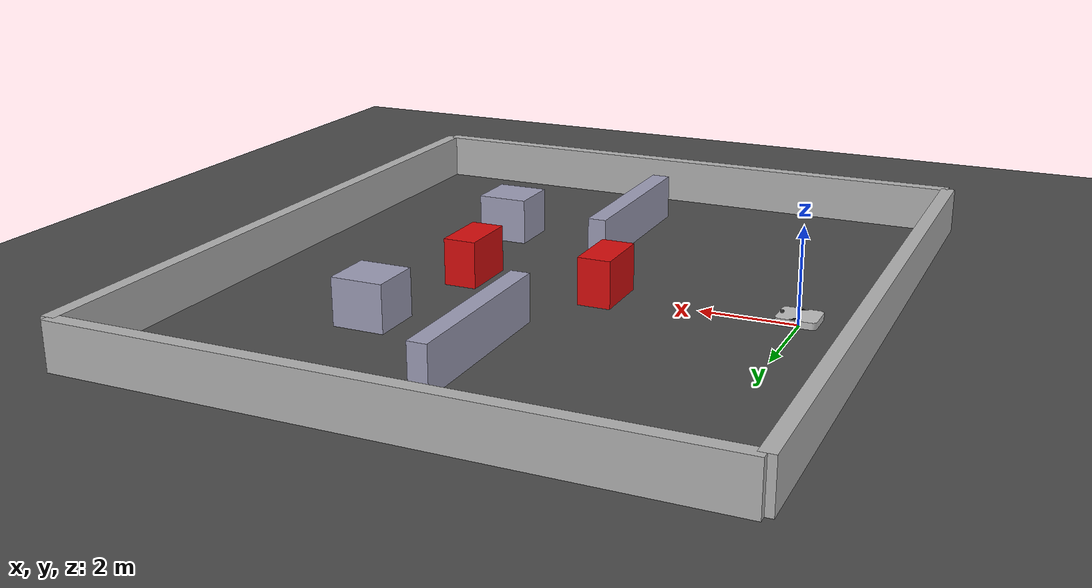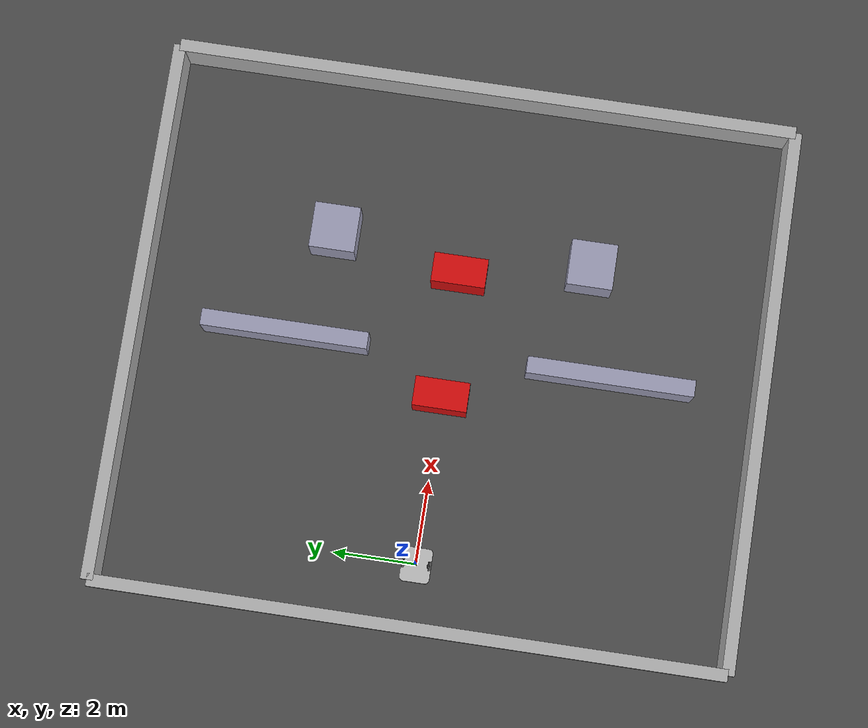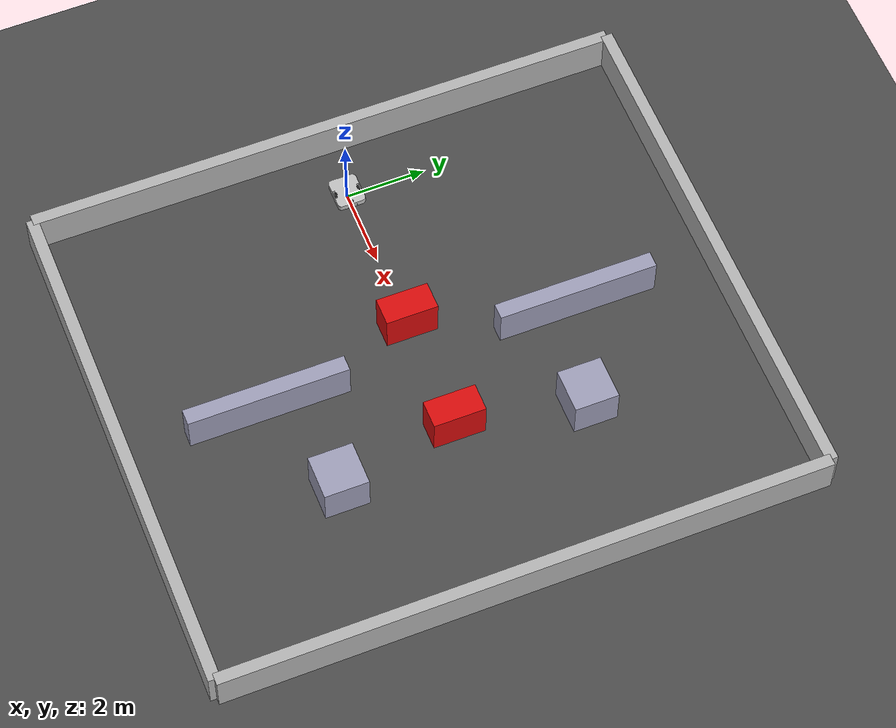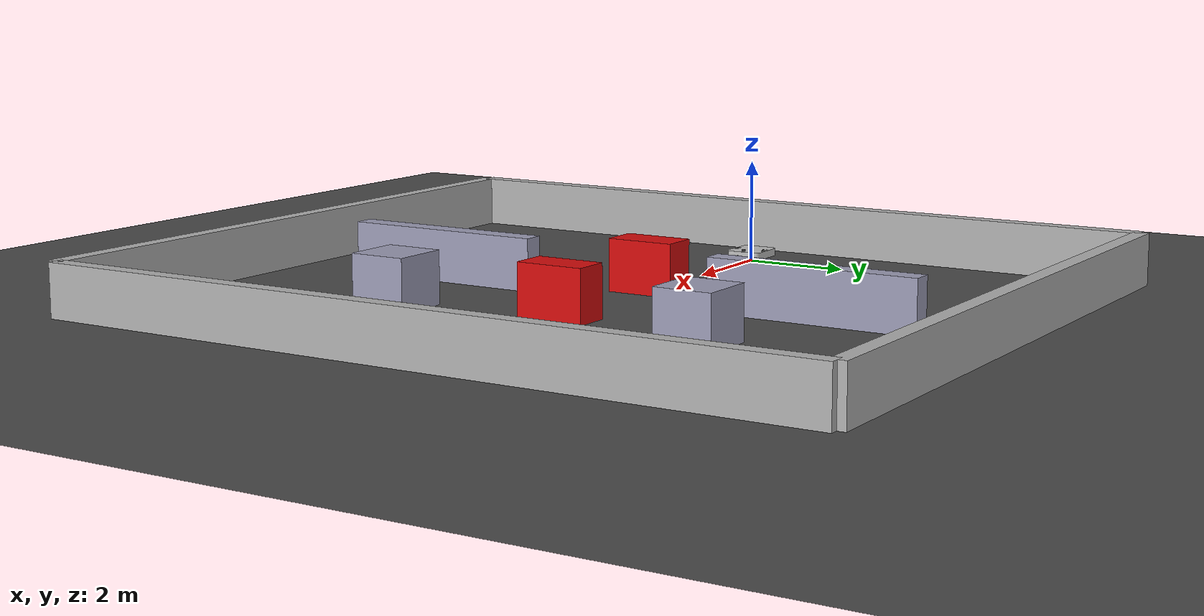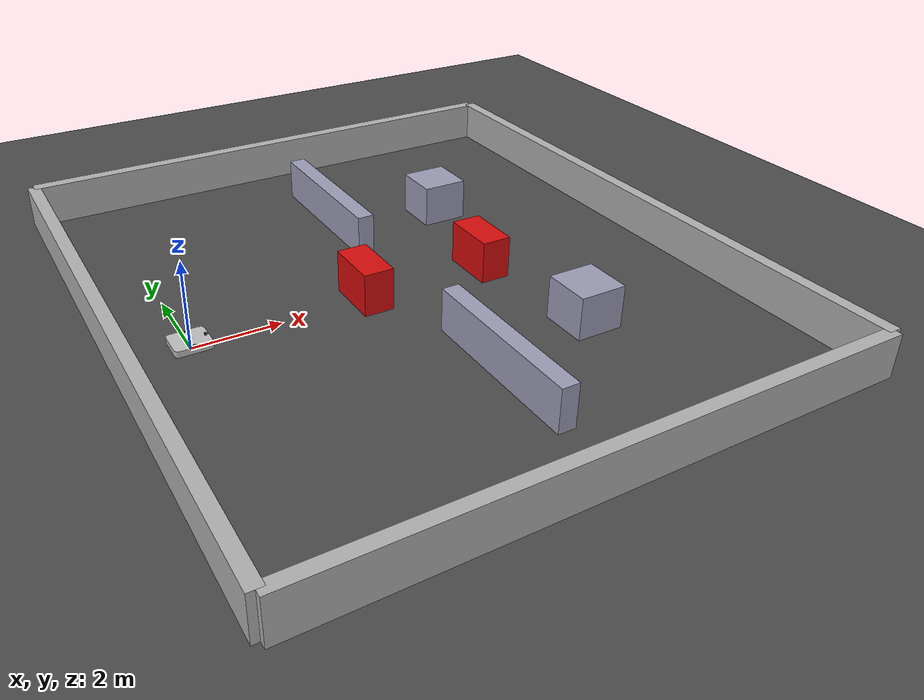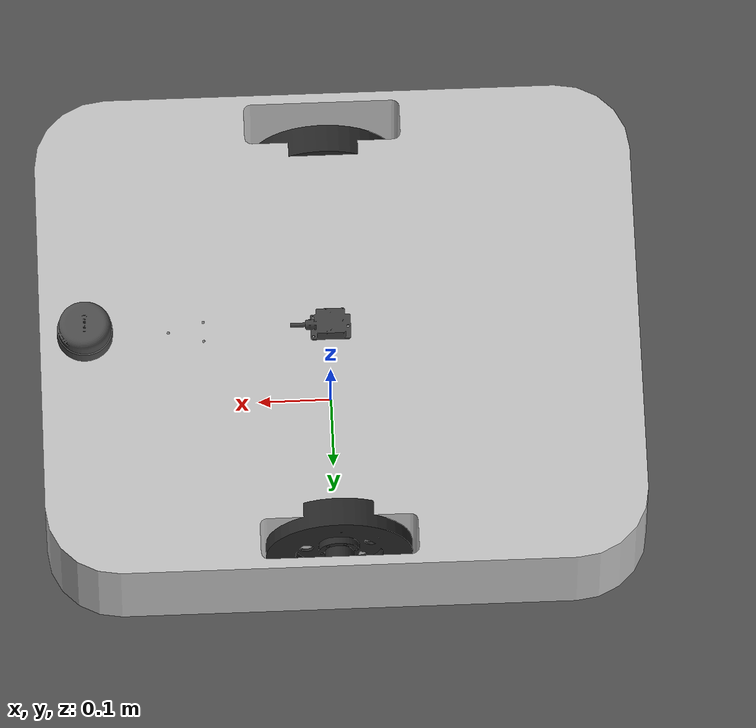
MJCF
<?xml version="1.0" encoding="utf-8"?>

<mujoco model="agv_nav2_test_unexpected_obstacle">

  <compiler
    angle="degree"
    meshdir="../meshes"
    autolimits="true"/>

  <option
    timestep="0.002"
    gravity="0 0 -9.81"
    integrator="implicitfast"/>

  <visual>
    <headlight
      ambient="0.4 0.4 0.4"
      diffuse="0.8 0.8 0.8"
      specular="0.1 0.1 0.1"/>
  </visual>

  <statistic center="0 0 0.2" extent="1.5"/>

  <default>
    <joint damping="0.1" armature="0.001"/>

    <!-- Visual STL meshes never participate in contact or LiDAR ray casting. -->
    <default class="visual">
      <geom
        type="mesh"
        contype="0"
        conaffinity="0"
        density="0"
        group="2"/>
    </default>

    <!-- Robot collision primitives remain in group 3. -->
    <default class="collision">
      <geom
        group="3"
        density="0"
        friction="1.0 0.005 0.0001"
        solref="0.005 1"
        solimp="0.9 0.95 0.001"/>
    </default>
  </default>

  <asset>
    <texture
      name="ground_texture"
      type="2d"
      builtin="checker"
      rgb1="0.25 0.25 0.25"
      rgb2="0.35 0.35 0.35"
      width="512"
      height="512"/>

    <material
      name="ground_material"
      texture="ground_texture"
      texrepeat="5 5"
      reflectance="0.05"/>

    <mesh name="base_link_mesh" file="base_link.STL"/>
    <mesh name="left_wheel_mesh" file="left_wheel.STL"/>
    <mesh name="right_wheel_mesh" file="right_wheel.STL"/>
    <mesh name="front_left_caster_mesh" file="front_left_caster.STL"/>
    <mesh name="front_right_caster_mesh" file="front_right_caster.STL"/>
    <mesh name="rear_left_caster_mesh" file="rear_left_caster.STL"/>
    <mesh name="rear_right_caster_mesh" file="rear_right_caster.STL"/>
    <mesh name="imu_mesh" file="imu.STL"/>
    <mesh name="lidar_mesh" file="lidar.STL"/>
  </asset>

  <worldbody>
    <light
      name="main_light"
      pos="0 0 4"
      dir="0 0 -1"
      directional="true"/>

    <geom
      name="floor"
      type="plane"
      group="0"
      size="80 30 0.1"
      material="ground_material"
      friction="1.0 0.005 0.0001"/>

    <!-- One large transfer-test arena; the base workspace model is untouched. -->
    <include file="transfer_combined_environment.xml"/>

    <!-- base_link starts 5 cm above its nominal settled height of 0.1 m. -->
    <body name="base_link" pos="0 0 0.15">
      <freejoint name="base_freejoint"/>

      <!--
        The active links sum to exactly 80 kg:
        chassis (including camera mass) + 2 wheels + 4 casters + IMU + LiDAR.
      -->
      <inertial
        pos="-0.01641684226393 -2.127036027730e-08 0.01536357867772"
        mass="77.76660059782901"
        fullinertia="3.2338238997685766 4.5790630022931795 7.535284316709289 6.94917763249993e-07 -0.010447117841865663 -5.34948547228727e-08"/>

      <geom
        name="base_visual"
        class="visual"
        mesh="base_link_mesh"
        rgba="0.75 0.75 0.75 1"/>

      <!-- Three boxes retain wheel clearance while covering the CAD envelope. -->
      <geom
        name="base_collision_rear"
        class="collision"
        type="box"
        pos="-0.322 0 0.015"
        size="0.100 0.357 0.0725"
        rgba="0.2 0.5 0.8 0.15"/>
      <geom
        name="base_collision_center"
        class="collision"
        type="box"
        pos="-0.012 0 0.015"
        size="0.210 0.250 0.0725"
        rgba="0.2 0.5 0.8 0.15"/>
      <geom
        name="base_collision_front"
        class="collision"
        type="box"
        pos="0.298 0 0.015"
        size="0.100 0.357 0.0725"
        rgba="0.2 0.5 0.8 0.15"/>

      <!-- Navigation reference at ground level when base_link is at z=0.1 m. -->
      <site
        name="base_foot_link"
        type="sphere"
        pos="0 0 -0.1"
        size="0.005"
        rgba="0 1 0 0"/>

      <!-- Positive wheel angle corresponds to forward robot motion (+X). -->
      <body name="left_wheel" pos="0 0.297 0" euler="-90 0 0">
        <joint
          name="left_wheel_jt"
          type="hinge"
          axis="0 0 1"
          limited="false"
          damping="0.2"/>
        <inertial
          pos="-2.2767068983e-06 -4.0883539315e-07 -0.0141278415"
          mass="0.936684355982048"
          fullinertia="0.0029343491062 0.0029343328072 0.0056452287041 3.0243843436e-09 1.7611681221e-08 3.1625847890e-09"/>
        <geom
          name="left_wheel_visual"
          class="visual"
          mesh="left_wheel_mesh"
          rgba="0.15 0.15 0.15 1"/>
        <geom
          name="left_wheel_collision"
          class="collision"
          type="cylinder"
          size="0.1 0.028"
          friction="1.2 0.01 0.0001"
          rgba="1 0 0 0.2"/>
      </body>

      <body name="right_wheel" pos="0 -0.297 0" euler="-90 0 0">
        <joint
          name="right_wheel_jt"
          type="hinge"
          axis="0 0 1"
          limited="false"
          damping="0.2"/>
        <inertial
          pos="2.0712286184e-06 -1.0298315041e-06 0.0141278415"
          mass="0.936684355982047"
          fullinertia="0.0029343462033 0.0029343357101 0.0056452287041 -6.9306759880e-09 1.6022183872e-08 -7.9663594389e-09"/>
        <geom
          name="right_wheel_visual"
          class="visual"
          mesh="right_wheel_mesh"
          rgba="0.15 0.15 0.15 1"/>
        <geom
          name="right_wheel_collision"
          class="collision"
          type="cylinder"
          size="0.1 0.028"
          friction="1.2 0.01 0.0001"
          rgba="1 0 0 0.2"/>
      </body>

      <!-- Free ball joints let the four ball casters roll in any direction. -->
      <body name="front_left_caster" pos="0.323 0.167 -0.078807">
        <joint name="front_left_caster_jt" type="ball" damping="0.001"/>
        <inertial
          pos="0 0 -2.7371825402e-05"
          mass="0.0399091557703669"
          fullinertia="7.2111462855e-06 7.2111444698e-06 7.2594199749e-06 8.8035157662e-13 -8.7566291737e-14 2.1607959245e-13"/>
        <geom name="caster_front_left_visual" class="visual" mesh="front_left_caster_mesh" rgba="0.2 0.2 0.2 1"/>
        <geom name="caster_front_left_collision" class="collision" type="sphere" size="0.0212" friction="0.35 0.002 0.0001" rgba="0.1 0.8 0.2 0.25"/>
      </body>

      <body name="front_right_caster" pos="0.323 -0.167 -0.078807">
        <joint name="front_right_caster_jt" type="ball" damping="0.001"/>
        <inertial
          pos="0 0 -2.7371825402e-05"
          mass="0.0399091557703669"
          fullinertia="7.2111462855e-06 7.2111444698e-06 7.2594199749e-06 8.8035157716e-13 -8.7566300715e-14 2.1607958912e-13"/>
        <geom name="caster_front_right_visual" class="visual" mesh="front_right_caster_mesh" rgba="0.2 0.2 0.2 1"/>
        <geom name="caster_front_right_collision" class="collision" type="sphere" size="0.0212" friction="0.35 0.002 0.0001" rgba="0.1 0.8 0.2 0.25"/>
      </body>

      <body name="rear_left_caster" pos="-0.347 0.167 -0.078807">
        <joint name="rear_left_caster_jt" type="ball" damping="0.001"/>
        <inertial
          pos="0 0 -2.7371825402e-05"
          mass="0.0399091557703668"
          fullinertia="7.2111462855e-06 7.2111444698e-06 7.2594199749e-06 8.8035157366e-13 -8.7566301701e-14 2.1607958824e-13"/>
        <geom name="caster_rear_left_visual" class="visual" mesh="rear_left_caster_mesh" rgba="0.2 0.2 0.2 1"/>
        <geom name="caster_rear_left_collision" class="collision" type="sphere" size="0.0212" friction="0.35 0.002 0.0001" rgba="0.1 0.8 0.2 0.25"/>
      </body>

      <body name="rear_right_caster" pos="-0.347 -0.167 -0.078807">
        <joint name="rear_right_caster_jt" type="ball" damping="0.001"/>
        <inertial
          pos="0 0 -2.7371825402e-05"
          mass="0.0399091557703668"
          fullinertia="7.2111459706e-06 7.2111447847e-06 7.2594199749e-06 -1.1169235652e-12 -1.2014432927e-13 -1.9980887354e-13"/>
        <geom name="caster_rear_right_visual" class="visual" mesh="rear_right_caster_mesh" rgba="0.2 0.2 0.2 1"/>
        <geom name="caster_rear_right_collision" class="collision" type="sphere" size="0.0212" friction="0.35 0.002 0.0001" rgba="0.1 0.8 0.2 0.25"/>
      </body>

      <!-- IMU is fixed to base_link, never to a rotating platform. -->
      <body name="imu" pos="0 0 0.1091">
        <inertial
          pos="0.0023989165 0 -0.0108251693"
          mass="0.0350113154456988"
          fullinertia="4.9486481208e-06 8.8682844667e-06 1.1262903048e-05 2.0030538049e-12 -1.7595997497e-08 6.5460652693e-23"/>
        <geom name="imu_visual" class="visual" mesh="imu_mesh" rgba="0.25 0.25 0.25 1"/>
        <site name="imu_site" type="sphere" pos="0 0 0" size="0.005" rgba="1 0.5 0 0"/>
      </body>

      <!-- LiDAR link origin is also the 2D ray-casting origin. -->
      <body name="lidar" pos="0.33152 0 0.11235">
        <inertial
          pos="0.0038697684 -1.4554375616e-05 -0.0055496380"
          mass="0.165382751635991"
          fullinertia="7.8865183611e-05 7.5190291494e-05 1.0994675306e-04 4.8471764092e-08 2.1847944396e-06 2.8860157251e-08"/>
        <geom name="lidar_visual" class="visual" mesh="lidar_mesh" rgba="0.3 0.3 0.3 1"/>
        <site name="lidar_origin" type="sphere" pos="0 0 0" size="0.005" rgba="1 0 0 0"/>
      </body>

    </body>
  </worldbody>

  <sensor>
    <gyro name="imu_gyro" site="imu_site"/>
    <accelerometer name="imu_accelerometer" site="imu_site"/>
    <framequat name="imu_orientation" objtype="site" objname="imu_site"/>
  </sensor>

  <actuator>
    <!-- 800 motor RPM through 10:1 gearbox = 8.3775804096 rad/s at wheel. -->
    <velocity
      name="left_wheel_motor"
      joint="left_wheel_jt"
      kv="100"
      ctrlrange="-8.3775804096 8.3775804096"
      forcerange="-19.1 19.1"/>
    <velocity
      name="right_wheel_motor"
      joint="right_wheel_jt"
      kv="100"
      ctrlrange="-8.3775804096 8.3775804096"
      forcerange="-19.1 19.1"/>
  </actuator>

</mujoco>

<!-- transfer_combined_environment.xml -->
<!-- Static walls are present in the PGM; red boxes are LiDAR-only surprises. -->
<mujocoinclude>
  <geom name="arena_left_wall" group="0" pos="-1.5 0 0.5" size="0.15 7.5 0.5" type="box" rgba="0.70 0.70 0.70 1" friction="1.0 0.005 0.0001"/>
  <geom name="arena_right_wall" group="0" pos="11.5 0 0.5" size="0.15 7.5 0.5" type="box" rgba="0.70 0.70 0.70 1" friction="1.0 0.005 0.0001"/>
  <geom name="arena_top_wall" group="0" pos="5 7.5 0.5" size="6.5 0.15 0.5" type="box" rgba="0.70 0.70 0.70 1" friction="1.0 0.005 0.0001"/>
  <geom name="arena_bottom_wall" group="0" pos="5 -7.5 0.5" size="6.5 0.15 0.5" type="box" rgba="0.70 0.70 0.70 1" friction="1.0 0.005 0.0001"/>

  <geom name="upper_static_wall" group="0" pos="5 3.9 0.5" size="0.20 2.0 0.5" type="box" rgba="0.62 0.62 0.72 1" friction="1.0 0.005 0.0001"/>
  <geom name="lower_static_wall" group="0" pos="5 -3.9 0.5" size="0.20 2.0 0.5" type="box" rgba="0.62 0.62 0.72 1" friction="1.0 0.005 0.0001"/>
  <geom name="upper_static_box" group="0" pos="7.6 3.1 0.5" size="0.55 0.55 0.5" type="box" rgba="0.62 0.62 0.72 1" friction="1.0 0.005 0.0001"/>
  <geom name="lower_static_box" group="0" pos="7.6 -3.1 0.5" size="0.55 0.55 0.5" type="box" rgba="0.62 0.62 0.72 1" friction="1.0 0.005 0.0001"/>

  <geom name="unexpected_red_box_1" group="0" pos="4 0 0.5" size="0.35 0.65 0.5" type="box" rgba="0.85 0.05 0.05 1" friction="1.0 0.005 0.0001"/>
  <geom name="unexpected_red_box_2" group="0" pos="7 0 0.5" size="0.35 0.65 0.5" type="box" rgba="0.85 0.05 0.05 1" friction="1.0 0.005 0.0001"/>
</mujocoinclude>
